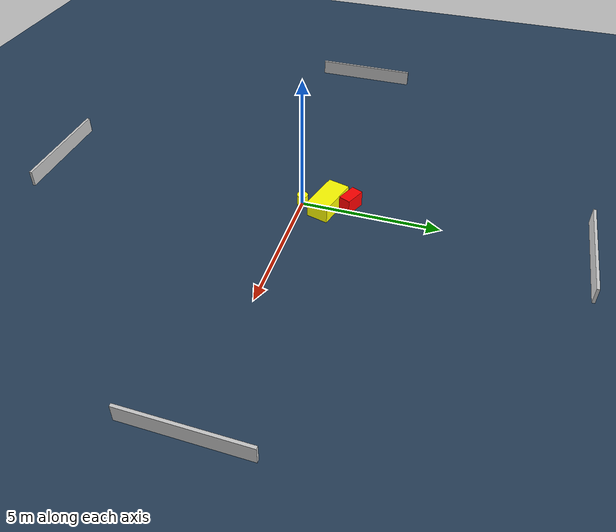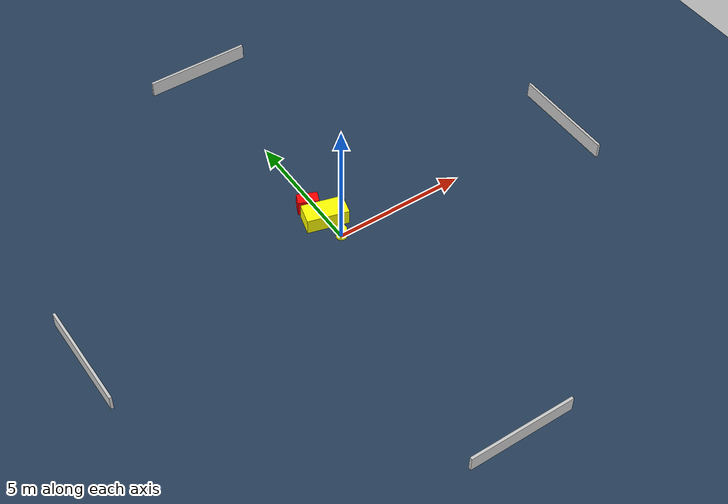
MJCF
<?xml version="1.0" ?>
<mujoco model="generated_environment">
  <option timestep="0.01" integrator="RK4" cone="elliptic"/>
  <default>
    <geom density="1"/>
  </default>
  <asset>
    <texture builtin="gradient" height="3072" name="skybox" rgb1="0.3 0.5 0.7" rgb2="0 0 0" type="skybox" width="512"/>
    <texture builtin="checker" height="300" name="groundplane" rgb1="0.2 0.3 0.4" rgb2="0.1 0.2 0.3" type="2d" width="300"/>
    <material name="groundplane" reflectance="0.2" texrepeat="5 5" texture="groundplane"/>
  </asset>
  <worldbody>
    <light dir="0 0 -1" directional="true" pos="0 0 1.5"/>
    <geom condim="3" friction="0.5 0.005 0.001" material="groundplane" name="floor" pos="0 0 0" size="0 0 0.05" type="plane"/>
    <body name="walls">
      <geom name="wall_1" condim="4" pos="-10.0 0.0 0.3" rgba="0.800000011920929 0.800000011920929 0.800000011920929 1.0" size="0.05 2.0 0.3" type="box"/>
      <geom name="wall_2" condim="4" pos="10.0 0.0 0.3" rgba="0.800000011920929 0.800000011920929 0.800000011920929 1.0" size="0.05 2.0 0.3" type="box"/>
      <geom name="wall_3" condim="4" pos="0.0 -10.0 0.3" rgba="0.800000011920929 0.800000011920929 0.800000011920929 1.0" size="2.0 0.05 0.3" type="box"/>
      <geom name="wall_4" condim="4" pos="0.0 10.0 0.3" rgba="0.800000011920929 0.800000011920929 0.800000011920929 1.0" size="2.0 0.05 0.3" type="box"/>
    </body>
    <body name="robot">
      <joint name="joint_x" type="slide" pos="0 0 0" axis="1 0 0"/>
      <joint name="joint_y" type="slide" pos="0 0 0" axis="0 1 0"/>
      <geom name="robot" type="cylinder" pos="0.0 0.0 0.2" size="0.2 0.2 0.0" mass="5.0" friction="1.0 0.005 0.0001" condim="4" rgba="1.0 1.0 0.0 1.0"/>
    </body>
    <body name="obstacle_1_movable">
      <geom name="obstacle_1_movable" condim="4" pos="-0.05630670804578399 0.945334989628293 0.3" euler="0 0 164.94593820260042" friction="0.0 0.005 0.001" rgba="1.0 1.0 0.0 1.0" size="0.778900443999303 0.39949872519609353 0.3" type="box" mass="0.1"/>
      <joint type="free"/>
    </body>
    <body name="obstacle_2_static">
      <geom name="obstacle_2_static" condim="4" pos="-0.2793320369827457 1.7224624078083226 0.3" euler="0 0 66.33166542938521" friction="0.0 0.005 0.001" rgba="1.0 0.0 0.0 1.0" size="0.21814155638446997 0.3824021361235367 0.3" type="box"/>
    </body>
  </worldbody>
  <actuator>
    <motor name="actuator_x" joint="joint_x" gear="1" ctrlrange="-1 1"/>
    <motor name="actuator_y" joint="joint_y" gear="1" ctrlrange="-1 1"/>
  </actuator>
</mujoco>
